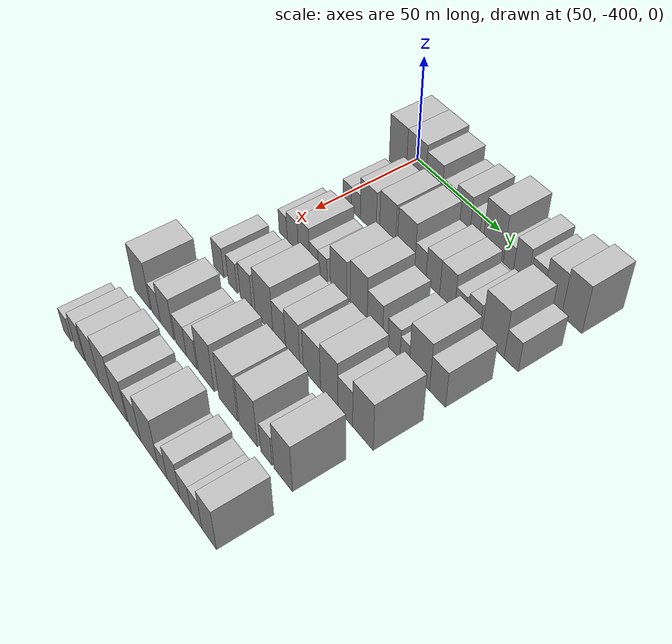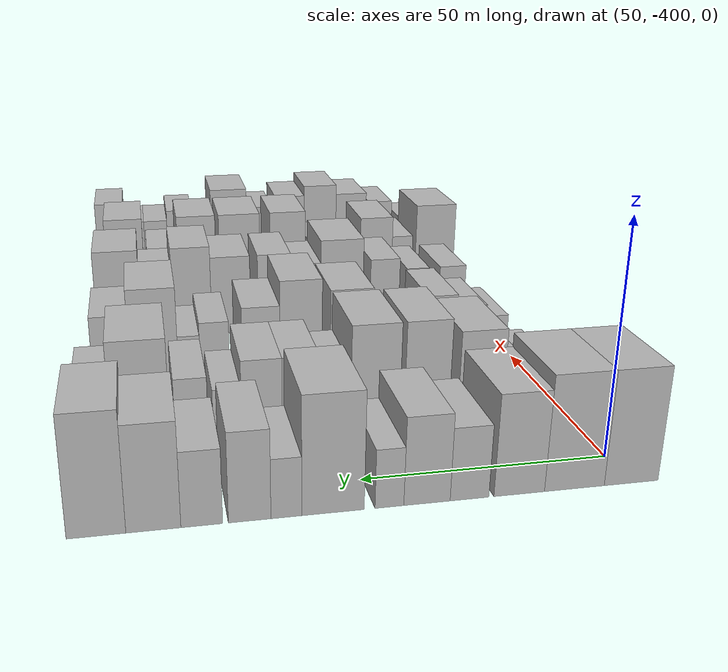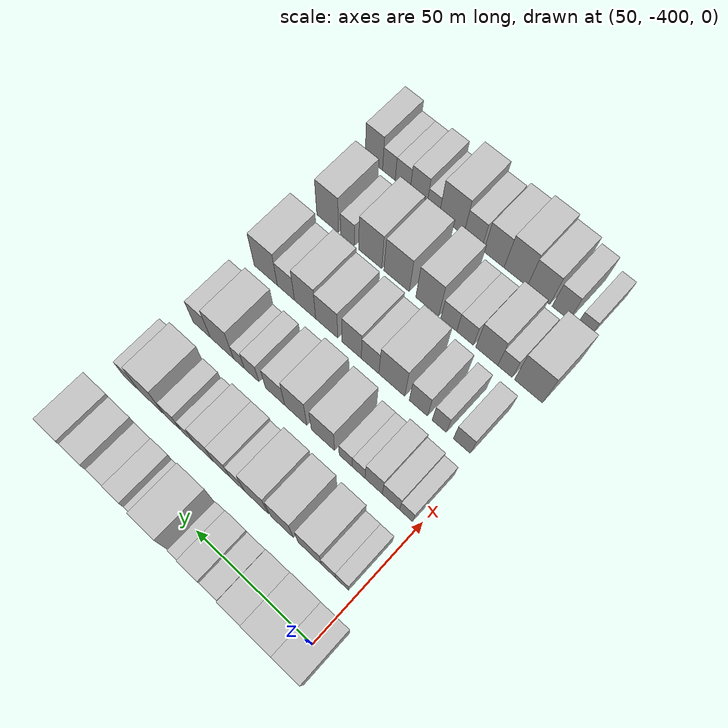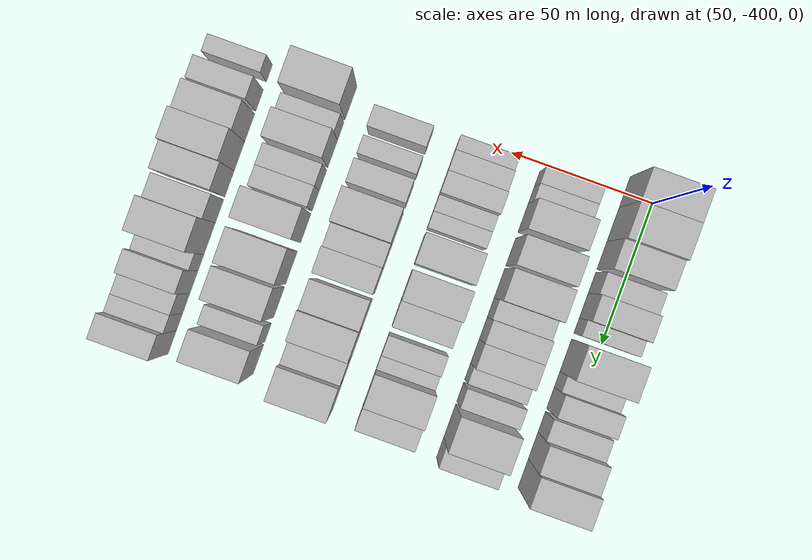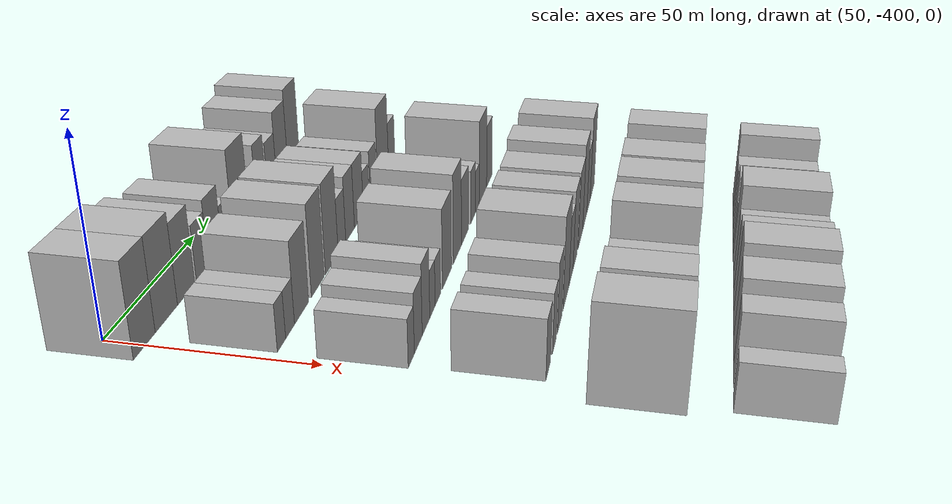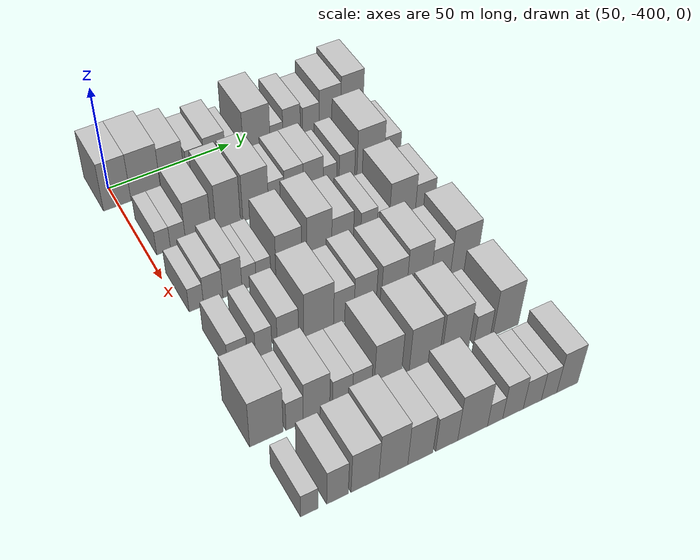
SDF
<sdf version="1.6">
 <world name="default">
  <model name="building_13">
   <static>1</static>
   <pose>50.0000 -400.4473 0 0.000000 0.000000 0.000000</pose>
   <link name="link">
    <pose>0 0 12.00 0 0 0</pose>
    <collision name="collision"><geometry><box><size>20.0000 10.9797 24.0000</size></box></geometry></collision>
    <visual name="visual">
     <cast_shadows>0</cast_shadows>
     <geometry><box><size>20.0000 10.9797 24.0000</size></box></geometry>
     <material>
      <script>
       <uri>model://HANNAS_wall/materials/scripts</uri>
       <uri>model://HANNAS_wall/materials/textures</uri>
       <name>vrc/HANNAS_wall</name>
      </script>
     </material>
    </visual>
   </link>
  </model>
  <model name="building_14">
   <static>1</static>
   <pose>50.0000 -388.9657 0 0.000000 0.000000 0.000000</pose>
   <link name="link">
    <pose>0 0 12.00 0 0 0</pose>
    <collision name="collision"><geometry><box><size>20.0000 11.9835 24.0000</size></box></geometry></collision>
    <visual name="visual">
     <cast_shadows>0</cast_shadows>
     <geometry><box><size>20.0000 11.9835 24.0000</size></box></geometry>
     <material>
      <script>
       <uri>model://HANNAS_wall/materials/scripts</uri>
       <uri>model://HANNAS_wall/materials/textures</uri>
       <name>vrc/HANNAS_wall</name>
      </script>
     </material>
    </visual>
   </link>
  </model>
  <model name="building_15">
   <static>1</static>
   <pose>50.0000 -378.0075 0 0.000000 0.000000 0.000000</pose>
   <link name="link">
    <pose>0 0 10.50 0 0 0</pose>
    <collision name="collision"><geometry><box><size>20.0000 9.9328 21.0000</size></box></geometry></collision>
    <visual name="visual">
     <cast_shadows>0</cast_shadows>
     <geometry><box><size>20.0000 9.9328 21.0000</size></box></geometry>
     <material>
      <script>
       <uri>model://HANNAS_wall/materials/scripts</uri>
       <uri>model://HANNAS_wall/materials/textures</uri>
       <name>vrc/HANNAS_wall</name>
      </script>
     </material>
    </visual>
   </link>
  </model>
  <model name="building_16">
   <static>1</static>
   <pose>50.0000 -368.3088 0 0.000000 0.000000 0.000000</pose>
   <link name="link">
    <pose>0 0 7.50 0 0 0</pose>
    <collision name="collision"><geometry><box><size>20.0000 7.4647 15.0000</size></box></geometry></collision>
    <visual name="visual">
     <cast_shadows>0</cast_shadows>
     <geometry><box><size>20.0000 7.4647 15.0000</size></box></geometry>
     <material>
      <script>
       <uri>model://HANNAS_wall/materials/scripts</uri>
       <uri>model://HANNAS_wall/materials/textures</uri>
       <name>vrc/HANNAS_wall</name>
      </script>
     </material>
    </visual>
   </link>
  </model>
  <model name="building_17">
   <static>1</static>
   <pose>50.0000 -360.1716 0 0.000000 0.000000 0.000000</pose>
   <link name="link">
    <pose>0 0 9.00 0 0 0</pose>
    <collision name="collision"><geometry><box><size>20.0000 8.8097 18.0000</size></box></geometry></collision>
    <visual name="visual">
     <cast_shadows>0</cast_shadows>
     <geometry><box><size>20.0000 8.8097 18.0000</size></box></geometry>
     <material>
      <script>
       <uri>model://HANNAS_wall/materials/scripts</uri>
       <uri>model://HANNAS_wall/materials/textures</uri>
       <name>vrc/HANNAS_wall</name>
      </script>
     </material>
    </visual>
   </link>
  </model>
  <model name="building_18">
   <static>1</static>
   <pose>50.0000 -353.0595 0 0.000000 0.000000 0.000000</pose>
   <link name="link">
    <pose>0 0 6.00 0 0 0</pose>
    <collision name="collision"><geometry><box><size>20.0000 5.4145 12.0000</size></box></geometry></collision>
    <visual name="visual">
     <cast_shadows>0</cast_shadows>
     <geometry><box><size>20.0000 5.4145 12.0000</size></box></geometry>
     <material>
      <script>
       <uri>model://HANNAS_wall/materials/scripts</uri>
       <uri>model://HANNAS_wall/materials/textures</uri>
       <name>vrc/HANNAS_wall</name>
      </script>
     </material>
    </visual>
   </link>
  </model>
  <model name="building_19">
   <static>1</static>
   <pose>50.0000 -342.5915 0 0.000000 0.000000 0.000000</pose>
   <link name="link">
    <pose>0 0 12.00 0 0 0</pose>
    <collision name="collision"><geometry><box><size>20.0000 11.5216 24.0000</size></box></geometry></collision>
    <visual name="visual">
     <cast_shadows>0</cast_shadows>
     <geometry><box><size>20.0000 11.5216 24.0000</size></box></geometry>
     <material>
      <script>
       <uri>model://HANNAS_wall/materials/scripts</uri>
       <uri>model://HANNAS_wall/materials/textures</uri>
       <name>vrc/HANNAS_wall</name>
      </script>
     </material>
    </visual>
   </link>
  </model>
  <model name="building_20">
   <static>1</static>
   <pose>50.0000 -334.0508 0 0.000000 0.000000 0.000000</pose>
   <link name="link">
    <pose>0 0 6.00 0 0 0</pose>
    <collision name="collision"><geometry><box><size>20.0000 5.5599 12.0000</size></box></geometry></collision>
    <visual name="visual">
     <cast_shadows>0</cast_shadows>
     <geometry><box><size>20.0000 5.5599 12.0000</size></box></geometry>
     <material>
      <script>
       <uri>model://HANNAS_wall/materials/scripts</uri>
       <uri>model://HANNAS_wall/materials/textures</uri>
       <name>vrc/HANNAS_wall</name>
      </script>
     </material>
    </visual>
   </link>
  </model>
  <model name="building_21">
   <static>1</static>
   <pose>50.0000 -327.4666 0 0.000000 0.000000 0.000000</pose>
   <link name="link">
    <pose>0 0 9.00 0 0 0</pose>
    <collision name="collision"><geometry><box><size>20.0000 7.6085 18.0000</size></box></geometry></collision>
    <visual name="visual">
     <cast_shadows>0</cast_shadows>
     <geometry><box><size>20.0000 7.6085 18.0000</size></box></geometry>
     <material>
      <script>
       <uri>model://HANNAS_wall/materials/scripts</uri>
       <uri>model://HANNAS_wall/materials/textures</uri>
       <name>vrc/HANNAS_wall</name>
      </script>
     </material>
    </visual>
   </link>
  </model>
  <model name="building_22">
   <static>1</static>
   <pose>50.0000 -318.9806 0 0.000000 0.000000 0.000000</pose>
   <link name="link">
    <pose>0 0 7.50 0 0 0</pose>
    <collision name="collision"><geometry><box><size>20.0000 7.3633 15.0000</size></box></geometry></collision>
    <visual name="visual">
     <cast_shadows>0</cast_shadows>
     <geometry><box><size>20.0000 7.3633 15.0000</size></box></geometry>
     <material>
      <script>
       <uri>model://HANNAS_wall/materials/scripts</uri>
       <uri>model://HANNAS_wall/materials/textures</uri>
       <name>vrc/HANNAS_wall</name>
      </script>
     </material>
    </visual>
   </link>
  </model>
  <model name="building_23">
   <static>1</static>
   <pose>50.0000 -310.5324 0 0.000000 0.000000 0.000000</pose>
   <link name="link">
    <pose>0 0 10.50 0 0 0</pose>
    <collision name="collision"><geometry><box><size>20.0000 9.5332 21.0000</size></box></geometry></collision>
    <visual name="visual">
     <cast_shadows>0</cast_shadows>
     <geometry><box><size>20.0000 9.5332 21.0000</size></box></geometry>
     <material>
      <script>
       <uri>model://HANNAS_wall/materials/scripts</uri>
       <uri>model://HANNAS_wall/materials/textures</uri>
       <name>vrc/HANNAS_wall</name>
      </script>
     </material>
    </visual>
   </link>
  </model>
  <model name="building_24">
   <static>1</static>
   <pose>50.0000 -300.6902 0 0.000000 0.000000 0.000000</pose>
   <link name="link">
    <pose>0 0 12.00 0 0 0</pose>
    <collision name="collision"><geometry><box><size>20.0000 10.1513 24.0000</size></box></geometry></collision>
    <visual name="visual">
     <cast_shadows>0</cast_shadows>
     <geometry><box><size>20.0000 10.1513 24.0000</size></box></geometry>
     <material>
      <script>
       <uri>model://HANNAS_wall/materials/scripts</uri>
       <uri>model://HANNAS_wall/materials/textures</uri>
       <name>vrc/HANNAS_wall</name>
      </script>
     </material>
    </visual>
   </link>
  </model>
  <model name="building_128">
   <static>1</static>
   <pose>79.0000 -394.4232 0 0.000000 0.000000 0.000000</pose>
   <link name="link">
    <pose>0 0 6.00 0 0 0</pose>
    <collision name="collision"><geometry><box><size>20.0000 5.4331 12.0000</size></box></geometry></collision>
    <visual name="visual">
     <cast_shadows>0</cast_shadows>
     <geometry><box><size>20.0000 5.4331 12.0000</size></box></geometry>
     <material>
      <script>
       <uri>model://HANNAS_wall/materials/scripts</uri>
       <uri>model://HANNAS_wall/materials/textures</uri>
       <name>vrc/HANNAS_wall</name>
      </script>
     </material>
    </visual>
   </link>
  </model>
  <model name="building_129">
   <static>1</static>
   <pose>79.0000 -388.7183 0 0.000000 0.000000 0.000000</pose>
   <link name="link">
    <pose>0 0 6.00 0 0 0</pose>
    <collision name="collision"><geometry><box><size>20.0000 5.9767 12.0000</size></box></geometry></collision>
    <visual name="visual">
     <cast_shadows>0</cast_shadows>
     <geometry><box><size>20.0000 5.9767 12.0000</size></box></geometry>
     <material>
      <script>
       <uri>model://HANNAS_wall/materials/scripts</uri>
       <uri>model://HANNAS_wall/materials/textures</uri>
       <name>vrc/HANNAS_wall</name>
      </script>
     </material>
    </visual>
   </link>
  </model>
  <model name="building_130">
   <static>1</static>
   <pose>79.0000 -380.6949 0 0.000000 0.000000 0.000000</pose>
   <link name="link">
    <pose>0 0 10.50 0 0 0</pose>
    <collision name="collision"><geometry><box><size>20.0000 10.0702 21.0000</size></box></geometry></collision>
    <visual name="visual">
     <cast_shadows>0</cast_shadows>
     <geometry><box><size>20.0000 10.0702 21.0000</size></box></geometry>
     <material>
      <script>
       <uri>model://HANNAS_wall/materials/scripts</uri>
       <uri>model://HANNAS_wall/materials/textures</uri>
       <name>vrc/HANNAS_wall</name>
      </script>
     </material>
    </visual>
   </link>
  </model>
  <model name="building_131">
   <static>1</static>
   <pose>79.0000 -368.7418 0 0.000000 0.000000 0.000000</pose>
   <link name="link">
    <pose>0 0 12.00 0 0 0</pose>
    <collision name="collision"><geometry><box><size>20.0000 9.8359 24.0000</size></box></geometry></collision>
    <visual name="visual">
     <cast_shadows>0</cast_shadows>
     <geometry><box><size>20.0000 9.8359 24.0000</size></box></geometry>
     <material>
      <script>
       <uri>model://HANNAS_wall/materials/scripts</uri>
       <uri>model://HANNAS_wall/materials/textures</uri>
       <name>vrc/HANNAS_wall</name>
      </script>
     </material>
    </visual>
   </link>
  </model>
  <model name="building_132">
   <static>1</static>
   <pose>79.0000 -357.5543 0 0.000000 0.000000 0.000000</pose>
   <link name="link">
    <pose>0 0 12.00 0 0 0</pose>
    <collision name="collision"><geometry><box><size>20.0000 10.5392 24.0000</size></box></geometry></collision>
    <visual name="visual">
     <cast_shadows>0</cast_shadows>
     <geometry><box><size>20.0000 10.5392 24.0000</size></box></geometry>
     <material>
      <script>
       <uri>model://HANNAS_wall/materials/scripts</uri>
       <uri>model://HANNAS_wall/materials/textures</uri>
       <name>vrc/HANNAS_wall</name>
      </script>
     </material>
    </visual>
   </link>
  </model>
  <model name="building_133">
   <static>1</static>
   <pose>79.0000 -348.9786 0 0.000000 0.000000 0.000000</pose>
   <link name="link">
    <pose>0 0 7.50 0 0 0</pose>
    <collision name="collision"><geometry><box><size>20.0000 6.6121 15.0000</size></box></geometry></collision>
    <visual name="visual">
     <cast_shadows>0</cast_shadows>
     <geometry><box><size>20.0000 6.6121 15.0000</size></box></geometry>
     <material>
      <script>
       <uri>model://HANNAS_wall/materials/scripts</uri>
       <uri>model://HANNAS_wall/materials/textures</uri>
       <name>vrc/HANNAS_wall</name>
      </script>
     </material>
    </visual>
   </link>
  </model>
  <model name="building_134">
   <static>1</static>
   <pose>79.0000 -341.7560 0 0.000000 0.000000 0.000000</pose>
   <link name="link">
    <pose>0 0 9.00 0 0 0</pose>
    <collision name="collision"><geometry><box><size>20.0000 7.8332 18.0000</size></box></geometry></collision>
    <visual name="visual">
     <cast_shadows>0</cast_shadows>
     <geometry><box><size>20.0000 7.8332 18.0000</size></box></geometry>
     <material>
      <script>
       <uri>model://HANNAS_wall/materials/scripts</uri>
       <uri>model://HANNAS_wall/materials/textures</uri>
       <name>vrc/HANNAS_wall</name>
      </script>
     </material>
    </visual>
   </link>
  </model>
  <model name="building_135">
   <static>1</static>
   <pose>79.0000 -333.6165 0 0.000000 0.000000 0.000000</pose>
   <link name="link">
    <pose>0 0 9.00 0 0 0</pose>
    <collision name="collision"><geometry><box><size>20.0000 8.4457 18.0000</size></box></geometry></collision>
    <visual name="visual">
     <cast_shadows>0</cast_shadows>
     <geometry><box><size>20.0000 8.4457 18.0000</size></box></geometry>
     <material>
      <script>
       <uri>model://HANNAS_wall/materials/scripts</uri>
       <uri>model://HANNAS_wall/materials/textures</uri>
       <name>vrc/HANNAS_wall</name>
      </script>
     </material>
    </visual>
   </link>
  </model>
  <model name="building_136">
   <static>1</static>
   <pose>79.0000 -326.4831 0 0.000000 0.000000 0.000000</pose>
   <link name="link">
    <pose>0 0 6.00 0 0 0</pose>
    <collision name="collision"><geometry><box><size>20.0000 5.8210 12.0000</size></box></geometry></collision>
    <visual name="visual">
     <cast_shadows>0</cast_shadows>
     <geometry><box><size>20.0000 5.8210 12.0000</size></box></geometry>
     <material>
      <script>
       <uri>model://HANNAS_wall/materials/scripts</uri>
       <uri>model://HANNAS_wall/materials/textures</uri>
       <name>vrc/HANNAS_wall</name>
      </script>
     </material>
    </visual>
   </link>
  </model>
  <model name="building_137">
   <static>1</static>
   <pose>79.0000 -319.1987 0 0.000000 0.000000 0.000000</pose>
   <link name="link">
    <pose>0 0 7.50 0 0 0</pose>
    <collision name="collision"><geometry><box><size>20.0000 6.7479 15.0000</size></box></geometry></collision>
    <visual name="visual">
     <cast_shadows>0</cast_shadows>
     <geometry><box><size>20.0000 6.7479 15.0000</size></box></geometry>
     <material>
      <script>
       <uri>model://HANNAS_wall/materials/scripts</uri>
       <uri>model://HANNAS_wall/materials/textures</uri>
       <name>vrc/HANNAS_wall</name>
      </script>
     </material>
    </visual>
   </link>
  </model>
  <model name="building_138">
   <static>1</static>
   <pose>79.0000 -308.9239 0 0.000000 0.000000 0.000000</pose>
   <link name="link">
    <pose>0 0 12.00 0 0 0</pose>
    <collision name="collision"><geometry><box><size>20.0000 11.8016 24.0000</size></box></geometry></collision>
    <visual name="visual">
     <cast_shadows>0</cast_shadows>
     <geometry><box><size>20.0000 11.8016 24.0000</size></box></geometry>
     <material>
      <script>
       <uri>model://HANNAS_wall/materials/scripts</uri>
       <uri>model://HANNAS_wall/materials/textures</uri>
       <name>vrc/HANNAS_wall</name>
      </script>
     </material>
    </visual>
   </link>
  </model>
  <model name="building_139">
   <static>1</static>
   <pose>79.0000 -299.4353 0 0.000000 0.000000 0.000000</pose>
   <link name="link">
    <pose>0 0 7.50 0 0 0</pose>
    <collision name="collision"><geometry><box><size>20.0000 7.1756 15.0000</size></box></geometry></collision>
    <visual name="visual">
     <cast_shadows>0</cast_shadows>
     <geometry><box><size>20.0000 7.1756 15.0000</size></box></geometry>
     <material>
      <script>
       <uri>model://HANNAS_wall/materials/scripts</uri>
       <uri>model://HANNAS_wall/materials/textures</uri>
       <name>vrc/HANNAS_wall</name>
      </script>
     </material>
    </visual>
   </link>
  </model>
  <model name="building_243">
   <static>1</static>
   <pose>108.0000 -394.8437 0 0.000000 0.000000 0.000000</pose>
   <link name="link">
    <pose>0 0 6.00 0 0 0</pose>
    <collision name="collision"><geometry><box><size>20.0000 5.5053 12.0000</size></box></geometry></collision>
    <visual name="visual">
     <cast_shadows>0</cast_shadows>
     <geometry><box><size>20.0000 5.5053 12.0000</size></box></geometry>
     <material>
      <script>
       <uri>model://HANNAS_wall/materials/scripts</uri>
       <uri>model://HANNAS_wall/materials/textures</uri>
       <name>vrc/HANNAS_wall</name>
      </script>
     </material>
    </visual>
   </link>
  </model>
  <model name="building_244">
   <static>1</static>
   <pose>108.0000 -388.4229 0 0.000000 0.000000 0.000000</pose>
   <link name="link">
    <pose>0 0 7.50 0 0 0</pose>
    <collision name="collision"><geometry><box><size>20.0000 7.3362 15.0000</size></box></geometry></collision>
    <visual name="visual">
     <cast_shadows>0</cast_shadows>
     <geometry><box><size>20.0000 7.3362 15.0000</size></box></geometry>
     <material>
      <script>
       <uri>model://HANNAS_wall/materials/scripts</uri>
       <uri>model://HANNAS_wall/materials/textures</uri>
       <name>vrc/HANNAS_wall</name>
      </script>
     </material>
    </visual>
   </link>
  </model>
  <model name="building_245">
   <static>1</static>
   <pose>108.0000 -381.0551 0 0.000000 0.000000 0.000000</pose>
   <link name="link">
    <pose>0 0 9.00 0 0 0</pose>
    <collision name="collision"><geometry><box><size>20.0000 7.3995 18.0000</size></box></geometry></collision>
    <visual name="visual">
     <cast_shadows>0</cast_shadows>
     <geometry><box><size>20.0000 7.3995 18.0000</size></box></geometry>
     <material>
      <script>
       <uri>model://HANNAS_wall/materials/scripts</uri>
       <uri>model://HANNAS_wall/materials/textures</uri>
       <name>vrc/HANNAS_wall</name>
      </script>
     </material>
    </visual>
   </link>
  </model>
  <model name="building_246">
   <static>1</static>
   <pose>108.0000 -374.5872 0 0.000000 0.000000 0.000000</pose>
   <link name="link">
    <pose>0 0 6.00 0 0 0</pose>
    <collision name="collision"><geometry><box><size>20.0000 5.5364 12.0000</size></box></geometry></collision>
    <visual name="visual">
     <cast_shadows>0</cast_shadows>
     <geometry><box><size>20.0000 5.5364 12.0000</size></box></geometry>
     <material>
      <script>
       <uri>model://HANNAS_wall/materials/scripts</uri>
       <uri>model://HANNAS_wall/materials/textures</uri>
       <name>vrc/HANNAS_wall</name>
      </script>
     </material>
    </visual>
   </link>
  </model>
  <model name="building_247">
   <static>1</static>
   <pose>108.0000 -368.9586 0 0.000000 0.000000 0.000000</pose>
   <link name="link">
    <pose>0 0 6.00 0 0 0</pose>
    <collision name="collision"><geometry><box><size>20.0000 5.7207 12.0000</size></box></geometry></collision>
    <visual name="visual">
     <cast_shadows>0</cast_shadows>
     <geometry><box><size>20.0000 5.7207 12.0000</size></box></geometry>
     <material>
      <script>
       <uri>model://HANNAS_wall/materials/scripts</uri>
       <uri>model://HANNAS_wall/materials/textures</uri>
       <name>vrc/HANNAS_wall</name>
      </script>
     </material>
    </visual>
   </link>
  </model>
  <model name="building_248">
   <static>1</static>
   <pose>108.0000 -358.9488 0 0.000000 0.000000 0.000000</pose>
   <link name="link">
    <pose>0 0 10.50 0 0 0</pose>
    <collision name="collision"><geometry><box><size>20.0000 10.2989 21.0000</size></box></geometry></collision>
    <visual name="visual">
     <cast_shadows>0</cast_shadows>
     <geometry><box><size>20.0000 10.2989 21.0000</size></box></geometry>
     <material>
      <script>
       <uri>model://HANNAS_wall/materials/scripts</uri>
       <uri>model://HANNAS_wall/materials/textures</uri>
       <name>vrc/HANNAS_wall</name>
      </script>
     </material>
    </visual>
   </link>
  </model>
  <model name="building_249">
   <static>1</static>
   <pose>108.0000 -346.7897 0 0.000000 0.000000 0.000000</pose>
   <link name="link">
    <pose>0 0 12.00 0 0 0</pose>
    <collision name="collision"><geometry><box><size>20.0000 10.0193 24.0000</size></box></geometry></collision>
    <visual name="visual">
     <cast_shadows>0</cast_shadows>
     <geometry><box><size>20.0000 10.0193 24.0000</size></box></geometry>
     <material>
      <script>
       <uri>model://HANNAS_wall/materials/scripts</uri>
       <uri>model://HANNAS_wall/materials/textures</uri>
       <name>vrc/HANNAS_wall</name>
      </script>
     </material>
    </visual>
   </link>
  </model>
  <model name="building_250">
   <static>1</static>
   <pose>108.0000 -337.3331 0 0.000000 0.000000 0.000000</pose>
   <link name="link">
    <pose>0 0 9.00 0 0 0</pose>
    <collision name="collision"><geometry><box><size>20.0000 8.8938 18.0000</size></box></geometry></collision>
    <visual name="visual">
     <cast_shadows>0</cast_shadows>
     <geometry><box><size>20.0000 8.8938 18.0000</size></box></geometry>
     <material>
      <script>
       <uri>model://HANNAS_wall/materials/scripts</uri>
       <uri>model://HANNAS_wall/materials/textures</uri>
       <name>vrc/HANNAS_wall</name>
      </script>
     </material>
    </visual>
   </link>
  </model>
  <model name="building_251">
   <static>1</static>
   <pose>108.0000 -326.4822 0 0.000000 0.000000 0.000000</pose>
   <link name="link">
    <pose>0 0 7.50 0 0 0</pose>
    <collision name="collision"><geometry><box><size>20.0000 6.8080 15.0000</size></box></geometry></collision>
    <visual name="visual">
     <cast_shadows>0</cast_shadows>
     <geometry><box><size>20.0000 6.8080 15.0000</size></box></geometry>
     <material>
      <script>
       <uri>model://HANNAS_wall/materials/scripts</uri>
       <uri>model://HANNAS_wall/materials/textures</uri>
       <name>vrc/HANNAS_wall</name>
      </script>
     </material>
    </visual>
   </link>
  </model>
  <model name="building_252">
   <static>1</static>
   <pose>108.0000 -320.5567 0 0.000000 0.000000 0.000000</pose>
   <link name="link">
    <pose>0 0 6.00 0 0 0</pose>
    <collision name="collision"><geometry><box><size>20.0000 5.0429 12.0000</size></box></geometry></collision>
    <visual name="visual">
     <cast_shadows>0</cast_shadows>
     <geometry><box><size>20.0000 5.0429 12.0000</size></box></geometry>
     <material>
      <script>
       <uri>model://HANNAS_wall/materials/scripts</uri>
       <uri>model://HANNAS_wall/materials/textures</uri>
       <name>vrc/HANNAS_wall</name>
      </script>
     </material>
    </visual>
   </link>
  </model>
  <model name="building_253">
   <static>1</static>
   <pose>108.0000 -312.5200 0 0.000000 0.000000 0.000000</pose>
   <link name="link">
    <pose>0 0 12.00 0 0 0</pose>
    <collision name="collision"><geometry><box><size>20.0000 11.0306 24.0000</size></box></geometry></collision>
    <visual name="visual">
     <cast_shadows>0</cast_shadows>
     <geometry><box><size>20.0000 11.0306 24.0000</size></box></geometry>
     <material>
      <script>
       <uri>model://HANNAS_wall/materials/scripts</uri>
       <uri>model://HANNAS_wall/materials/textures</uri>
       <name>vrc/HANNAS_wall</name>
      </script>
     </material>
    </visual>
   </link>
  </model>
  <model name="building_254">
   <static>1</static>
   <pose>108.0000 -302.8334 0 0.000000 0.000000 0.000000</pose>
   <link name="link">
    <pose>0 0 9.00 0 0 0</pose>
    <collision name="collision"><geometry><box><size>20.0000 8.3425 18.0000</size></box></geometry></collision>
    <visual name="visual">
     <cast_shadows>0</cast_shadows>
     <geometry><box><size>20.0000 8.3425 18.0000</size></box></geometry>
     <material>
      <script>
       <uri>model://HANNAS_wall/materials/scripts</uri>
       <uri>model://HANNAS_wall/materials/textures</uri>
       <name>vrc/HANNAS_wall</name>
      </script>
     </material>
    </visual>
   </link>
  </model>
  <model name="building_359">
   <static>1</static>
   <pose>137.0000 -393.1329 0 0.000000 0.000000 0.000000</pose>
   <link name="link">
    <pose>0 0 7.50 0 0 0</pose>
    <collision name="collision"><geometry><box><size>20.0000 7.1959 15.0000</size></box></geometry></collision>
    <visual name="visual">
     <cast_shadows>0</cast_shadows>
     <geometry><box><size>20.0000 7.1959 15.0000</size></box></geometry>
     <material>
      <script>
       <uri>model://HANNAS_wall/materials/scripts</uri>
       <uri>model://HANNAS_wall/materials/textures</uri>
       <name>vrc/HANNAS_wall</name>
      </script>
     </material>
    </visual>
   </link>
  </model>
  <model name="building_360">
   <static>1</static>
   <pose>137.0000 -383.4746 0 0.000000 0.000000 0.000000</pose>
   <link name="link">
    <pose>0 0 7.50 0 0 0</pose>
    <collision name="collision"><geometry><box><size>20.0000 6.1206 15.0000</size></box></geometry></collision>
    <visual name="visual">
     <cast_shadows>0</cast_shadows>
     <geometry><box><size>20.0000 6.1206 15.0000</size></box></geometry>
     <material>
      <script>
       <uri>model://HANNAS_wall/materials/scripts</uri>
       <uri>model://HANNAS_wall/materials/textures</uri>
       <name>vrc/HANNAS_wall</name>
      </script>
     </material>
    </visual>
   </link>
  </model>
  <model name="building_361">
   <static>1</static>
   <pose>137.0000 -374.4410 0 0.000000 0.000000 0.000000</pose>
   <link name="link">
    <pose>0 0 9.00 0 0 0</pose>
    <collision name="collision"><geometry><box><size>20.0000 7.9466 18.0000</size></box></geometry></collision>
    <visual name="visual">
     <cast_shadows>0</cast_shadows>
     <geometry><box><size>20.0000 7.9466 18.0000</size></box></geometry>
     <material>
      <script>
       <uri>model://HANNAS_wall/materials/scripts</uri>
       <uri>model://HANNAS_wall/materials/textures</uri>
       <name>vrc/HANNAS_wall</name>
      </script>
     </material>
    </visual>
   </link>
  </model>
  <model name="building_362">
   <static>1</static>
   <pose>137.0000 -362.7457 0 0.000000 0.000000 0.000000</pose>
   <link name="link">
    <pose>0 0 12.00 0 0 0</pose>
    <collision name="collision"><geometry><box><size>20.0000 11.4441 24.0000</size></box></geometry></collision>
    <visual name="visual">
     <cast_shadows>0</cast_shadows>
     <geometry><box><size>20.0000 11.4441 24.0000</size></box></geometry>
     <material>
      <script>
       <uri>model://HANNAS_wall/materials/scripts</uri>
       <uri>model://HANNAS_wall/materials/textures</uri>
       <name>vrc/HANNAS_wall</name>
      </script>
     </material>
    </visual>
   </link>
  </model>
  <model name="building_363">
   <static>1</static>
   <pose>137.0000 -353.0600 0 0.000000 0.000000 0.000000</pose>
   <link name="link">
    <pose>0 0 9.00 0 0 0</pose>
    <collision name="collision"><geometry><box><size>20.0000 7.9272 18.0000</size></box></geometry></collision>
    <visual name="visual">
     <cast_shadows>0</cast_shadows>
     <geometry><box><size>20.0000 7.9272 18.0000</size></box></geometry>
     <material>
      <script>
       <uri>model://HANNAS_wall/materials/scripts</uri>
       <uri>model://HANNAS_wall/materials/textures</uri>
       <name>vrc/HANNAS_wall</name>
      </script>
     </material>
    </visual>
   </link>
  </model>
  <model name="building_364">
   <static>1</static>
   <pose>137.0000 -344.7303 0 0.000000 0.000000 0.000000</pose>
   <link name="link">
    <pose>0 0 10.50 0 0 0</pose>
    <collision name="collision"><geometry><box><size>20.0000 8.7323 21.0000</size></box></geometry></collision>
    <visual name="visual">
     <cast_shadows>0</cast_shadows>
     <geometry><box><size>20.0000 8.7323 21.0000</size></box></geometry>
     <material>
      <script>
       <uri>model://HANNAS_wall/materials/scripts</uri>
       <uri>model://HANNAS_wall/materials/textures</uri>
       <name>vrc/HANNAS_wall</name>
      </script>
     </material>
    </visual>
   </link>
  </model>
  <model name="building_365">
   <static>1</static>
   <pose>137.0000 -333.2692 0 0.000000 0.000000 0.000000</pose>
   <link name="link">
    <pose>0 0 10.50 0 0 0</pose>
    <collision name="collision"><geometry><box><size>20.0000 10.1899 21.0000</size></box></geometry></collision>
    <visual name="visual">
     <cast_shadows>0</cast_shadows>
     <geometry><box><size>20.0000 10.1899 21.0000</size></box></geometry>
     <material>
      <script>
       <uri>model://HANNAS_wall/materials/scripts</uri>
       <uri>model://HANNAS_wall/materials/textures</uri>
       <name>vrc/HANNAS_wall</name>
      </script>
     </material>
    </visual>
   </link>
  </model>
  <model name="building_366">
   <static>1</static>
   <pose>137.0000 -323.1924 0 0.000000 0.000000 0.000000</pose>
   <link name="link">
    <pose>0 0 12.00 0 0 0</pose>
    <collision name="collision"><geometry><box><size>20.0000 9.9635 24.0000</size></box></geometry></collision>
    <visual name="visual">
     <cast_shadows>0</cast_shadows>
     <geometry><box><size>20.0000 9.9635 24.0000</size></box></geometry>
     <material>
      <script>
       <uri>model://HANNAS_wall/materials/scripts</uri>
       <uri>model://HANNAS_wall/materials/textures</uri>
       <name>vrc/HANNAS_wall</name>
      </script>
     </material>
    </visual>
   </link>
  </model>
  <model name="building_367">
   <static>1</static>
   <pose>137.0000 -314.1323 0 0.000000 0.000000 0.000000</pose>
   <link name="link">
    <pose>0 0 9.00 0 0 0</pose>
    <collision name="collision"><geometry><box><size>20.0000 8.1568 18.0000</size></box></geometry></collision>
    <visual name="visual">
     <cast_shadows>0</cast_shadows>
     <geometry><box><size>20.0000 8.1568 18.0000</size></box></geometry>
     <material>
      <script>
       <uri>model://HANNAS_wall/materials/scripts</uri>
       <uri>model://HANNAS_wall/materials/textures</uri>
       <name>vrc/HANNAS_wall</name>
      </script>
     </material>
    </visual>
   </link>
  </model>
  <model name="building_368">
   <static>1</static>
   <pose>137.0000 -304.4791 0 0.000000 0.000000 0.000000</pose>
   <link name="link">
    <pose>0 0 12.00 0 0 0</pose>
    <collision name="collision"><geometry><box><size>20.0000 11.1495 24.0000</size></box></geometry></collision>
    <visual name="visual">
     <cast_shadows>0</cast_shadows>
     <geometry><box><size>20.0000 11.1495 24.0000</size></box></geometry>
     <material>
      <script>
       <uri>model://HANNAS_wall/materials/scripts</uri>
       <uri>model://HANNAS_wall/materials/textures</uri>
       <name>vrc/HANNAS_wall</name>
      </script>
     </material>
    </visual>
   </link>
  </model>
  <model name="building_470">
   <static>1</static>
   <pose>166.0000 -397.2016 0 0.000000 0.000000 0.000000</pose>
   <link name="link">
    <pose>0 0 12.00 0 0 0</pose>
    <collision name="collision"><geometry><box><size>20.0000 11.8601 24.0000</size></box></geometry></collision>
    <visual name="visual">
     <cast_shadows>0</cast_shadows>
     <geometry><box><size>20.0000 11.8601 24.0000</size></box></geometry>
     <material>
      <script>
       <uri>model://HANNAS_wall/materials/scripts</uri>
       <uri>model://HANNAS_wall/materials/textures</uri>
       <name>vrc/HANNAS_wall</name>
      </script>
     </material>
    </visual>
   </link>
  </model>
  <model name="building_471">
   <static>1</static>
   <pose>166.0000 -387.1842 0 0.000000 0.000000 0.000000</pose>
   <link name="link">
    <pose>0 0 7.50 0 0 0</pose>
    <collision name="collision"><geometry><box><size>20.0000 6.1746 15.0000</size></box></geometry></collision>
    <visual name="visual">
     <cast_shadows>0</cast_shadows>
     <geometry><box><size>20.0000 6.1746 15.0000</size></box></geometry>
     <material>
      <script>
       <uri>model://HANNAS_wall/materials/scripts</uri>
       <uri>model://HANNAS_wall/materials/textures</uri>
       <name>vrc/HANNAS_wall</name>
      </script>
     </material>
    </visual>
   </link>
  </model>
  <model name="building_472">
   <static>1</static>
   <pose>166.0000 -379.2861 0 0.000000 0.000000 0.000000</pose>
   <link name="link">
    <pose>0 0 10.50 0 0 0</pose>
    <collision name="collision"><geometry><box><size>20.0000 9.6215 21.0000</size></box></geometry></collision>
    <visual name="visual">
     <cast_shadows>0</cast_shadows>
     <geometry><box><size>20.0000 9.6215 21.0000</size></box></geometry>
     <material>
      <script>
       <uri>model://HANNAS_wall/materials/scripts</uri>
       <uri>model://HANNAS_wall/materials/textures</uri>
       <name>vrc/HANNAS_wall</name>
      </script>
     </material>
    </visual>
   </link>
  </model>
  <model name="building_473">
   <static>1</static>
   <pose>166.0000 -369.7898 0 0.000000 0.000000 0.000000</pose>
   <link name="link">
    <pose>0 0 7.50 0 0 0</pose>
    <collision name="collision"><geometry><box><size>20.0000 7.3712 15.0000</size></box></geometry></collision>
    <visual name="visual">
     <cast_shadows>0</cast_shadows>
     <geometry><box><size>20.0000 7.3712 15.0000</size></box></geometry>
     <material>
      <script>
       <uri>model://HANNAS_wall/materials/scripts</uri>
       <uri>model://HANNAS_wall/materials/textures</uri>
       <name>vrc/HANNAS_wall</name>
      </script>
     </material>
    </visual>
   </link>
  </model>
  <model name="building_474">
   <static>1</static>
   <pose>166.0000 -362.5736 0 0.000000 0.000000 0.000000</pose>
   <link name="link">
    <pose>0 0 7.50 0 0 0</pose>
    <collision name="collision"><geometry><box><size>20.0000 7.0613 15.0000</size></box></geometry></collision>
    <visual name="visual">
     <cast_shadows>0</cast_shadows>
     <geometry><box><size>20.0000 7.0613 15.0000</size></box></geometry>
     <material>
      <script>
       <uri>model://HANNAS_wall/materials/scripts</uri>
       <uri>model://HANNAS_wall/materials/textures</uri>
       <name>vrc/HANNAS_wall</name>
      </script>
     </material>
    </visual>
   </link>
  </model>
  <model name="building_475">
   <static>1</static>
   <pose>166.0000 -352.8922 0 0.000000 0.000000 0.000000</pose>
   <link name="link">
    <pose>0 0 12.00 0 0 0</pose>
    <collision name="collision"><geometry><box><size>20.0000 10.3015 24.0000</size></box></geometry></collision>
    <visual name="visual">
     <cast_shadows>0</cast_shadows>
     <geometry><box><size>20.0000 10.3015 24.0000</size></box></geometry>
     <material>
      <script>
       <uri>model://HANNAS_wall/materials/scripts</uri>
       <uri>model://HANNAS_wall/materials/textures</uri>
       <name>vrc/HANNAS_wall</name>
      </script>
     </material>
    </visual>
   </link>
  </model>
  <model name="building_476">
   <static>1</static>
   <pose>166.0000 -338.8973 0 0.000000 0.000000 0.000000</pose>
   <link name="link">
    <pose>0 0 12.00 0 0 0</pose>
    <collision name="collision"><geometry><box><size>20.0000 11.6883 24.0000</size></box></geometry></collision>
    <visual name="visual">
     <cast_shadows>0</cast_shadows>
     <geometry><box><size>20.0000 11.6883 24.0000</size></box></geometry>
     <material>
      <script>
       <uri>model://HANNAS_wall/materials/scripts</uri>
       <uri>model://HANNAS_wall/materials/textures</uri>
       <name>vrc/HANNAS_wall</name>
      </script>
     </material>
    </visual>
   </link>
  </model>
  <model name="building_477">
   <static>1</static>
   <pose>166.0000 -326.6421 0 0.000000 0.000000 0.000000</pose>
   <link name="link">
    <pose>0 0 12.00 0 0 0</pose>
    <collision name="collision"><geometry><box><size>20.0000 10.8221 24.0000</size></box></geometry></collision>
    <visual name="visual">
     <cast_shadows>0</cast_shadows>
     <geometry><box><size>20.0000 10.8221 24.0000</size></box></geometry>
     <material>
      <script>
       <uri>model://HANNAS_wall/materials/scripts</uri>
       <uri>model://HANNAS_wall/materials/textures</uri>
       <name>vrc/HANNAS_wall</name>
      </script>
     </material>
    </visual>
   </link>
  </model>
  <model name="building_478">
   <static>1</static>
   <pose>166.0000 -315.9344 0 0.000000 0.000000 0.000000</pose>
   <link name="link">
    <pose>0 0 7.50 0 0 0</pose>
    <collision name="collision"><geometry><box><size>20.0000 6.5931 15.0000</size></box></geometry></collision>
    <visual name="visual">
     <cast_shadows>0</cast_shadows>
     <geometry><box><size>20.0000 6.5931 15.0000</size></box></geometry>
     <material>
      <script>
       <uri>model://HANNAS_wall/materials/scripts</uri>
       <uri>model://HANNAS_wall/materials/textures</uri>
       <name>vrc/HANNAS_wall</name>
      </script>
     </material>
    </visual>
   </link>
  </model>
  <model name="building_479">
   <static>1</static>
   <pose>166.0000 -306.4144 0 0.000000 0.000000 0.000000</pose>
   <link name="link">
    <pose>0 0 12.00 0 0 0</pose>
    <collision name="collision"><geometry><box><size>20.0000 10.4469 24.0000</size></box></geometry></collision>
    <visual name="visual">
     <cast_shadows>0</cast_shadows>
     <geometry><box><size>20.0000 10.4469 24.0000</size></box></geometry>
     <material>
      <script>
       <uri>model://HANNAS_wall/materials/scripts</uri>
       <uri>model://HANNAS_wall/materials/textures</uri>
       <name>vrc/HANNAS_wall</name>
      </script>
     </material>
    </visual>
   </link>
  </model>
  <model name="building_584">
   <static>1</static>
   <pose>195.0000 -397.4251 0 0.000000 0.000000 0.000000</pose>
   <link name="link">
    <pose>0 0 6.00 0 0 0</pose>
    <collision name="collision"><geometry><box><size>20.0000 5.9370 12.0000</size></box></geometry></collision>
    <visual name="visual">
     <cast_shadows>0</cast_shadows>
     <geometry><box><size>20.0000 5.9370 12.0000</size></box></geometry>
     <material>
      <script>
       <uri>model://HANNAS_wall/materials/scripts</uri>
       <uri>model://HANNAS_wall/materials/textures</uri>
       <name>vrc/HANNAS_wall</name>
      </script>
     </material>
    </visual>
   </link>
  </model>
  <model name="building_585">
   <static>1</static>
   <pose>195.0000 -387.7228 0 0.000000 0.000000 0.000000</pose>
   <link name="link">
    <pose>0 0 9.00 0 0 0</pose>
    <collision name="collision"><geometry><box><size>20.0000 7.4676 18.0000</size></box></geometry></collision>
    <visual name="visual">
     <cast_shadows>0</cast_shadows>
     <geometry><box><size>20.0000 7.4676 18.0000</size></box></geometry>
     <material>
      <script>
       <uri>model://HANNAS_wall/materials/scripts</uri>
       <uri>model://HANNAS_wall/materials/textures</uri>
       <name>vrc/HANNAS_wall</name>
      </script>
     </material>
    </visual>
   </link>
  </model>
  <model name="building_586">
   <static>1</static>
   <pose>195.0000 -378.0646 0 0.000000 0.000000 0.000000</pose>
   <link name="link">
    <pose>0 0 10.50 0 0 0</pose>
    <collision name="collision"><geometry><box><size>20.0000 9.8488 21.0000</size></box></geometry></collision>
    <visual name="visual">
     <cast_shadows>0</cast_shadows>
     <geometry><box><size>20.0000 9.8488 21.0000</size></box></geometry>
     <material>
      <script>
       <uri>model://HANNAS_wall/materials/scripts</uri>
       <uri>model://HANNAS_wall/materials/textures</uri>
       <name>vrc/HANNAS_wall</name>
      </script>
     </material>
    </visual>
   </link>
  </model>
  <model name="building_587">
   <static>1</static>
   <pose>195.0000 -367.9574 0 0.000000 0.000000 0.000000</pose>
   <link name="link">
    <pose>0 0 12.00 0 0 0</pose>
    <collision name="collision"><geometry><box><size>20.0000 10.3654 24.0000</size></box></geometry></collision>
    <visual name="visual">
     <cast_shadows>0</cast_shadows>
     <geometry><box><size>20.0000 10.3654 24.0000</size></box></geometry>
     <material>
      <script>
       <uri>model://HANNAS_wall/materials/scripts</uri>
       <uri>model://HANNAS_wall/materials/textures</uri>
       <name>vrc/HANNAS_wall</name>
      </script>
     </material>
    </visual>
   </link>
  </model>
  <model name="building_588">
   <static>1</static>
   <pose>195.0000 -358.1747 0 0.000000 0.000000 0.000000</pose>
   <link name="link">
    <pose>0 0 10.50 0 0 0</pose>
    <collision name="collision"><geometry><box><size>20.0000 9.2001 21.0000</size></box></geometry></collision>
    <visual name="visual">
     <cast_shadows>0</cast_shadows>
     <geometry><box><size>20.0000 9.2001 21.0000</size></box></geometry>
     <material>
      <script>
       <uri>model://HANNAS_wall/materials/scripts</uri>
       <uri>model://HANNAS_wall/materials/textures</uri>
       <name>vrc/HANNAS_wall</name>
      </script>
     </material>
    </visual>
   </link>
  </model>
  <model name="building_589">
   <static>1</static>
   <pose>195.0000 -348.4840 0 0.000000 0.000000 0.000000</pose>
   <link name="link">
    <pose>0 0 9.00 0 0 0</pose>
    <collision name="collision"><geometry><box><size>20.0000 8.1812 18.0000</size></box></geometry></collision>
    <visual name="visual">
     <cast_shadows>0</cast_shadows>
     <geometry><box><size>20.0000 8.1812 18.0000</size></box></geometry>
     <material>
      <script>
       <uri>model://HANNAS_wall/materials/scripts</uri>
       <uri>model://HANNAS_wall/materials/textures</uri>
       <name>vrc/HANNAS_wall</name>
      </script>
     </material>
    </visual>
   </link>
  </model>
  <model name="building_590">
   <static>1</static>
   <pose>195.0000 -338.7572 0 0.000000 0.000000 0.000000</pose>
   <link name="link">
    <pose>0 0 12.00 0 0 0</pose>
    <collision name="collision"><geometry><box><size>20.0000 11.2724 24.0000</size></box></geometry></collision>
    <visual name="visual">
     <cast_shadows>0</cast_shadows>
     <geometry><box><size>20.0000 11.2724 24.0000</size></box></geometry>
     <material>
      <script>
       <uri>model://HANNAS_wall/materials/scripts</uri>
       <uri>model://HANNAS_wall/materials/textures</uri>
       <name>vrc/HANNAS_wall</name>
      </script>
     </material>
    </visual>
   </link>
  </model>
  <model name="building_591">
   <static>1</static>
   <pose>195.0000 -330.2278 0 0.000000 0.000000 0.000000</pose>
   <link name="link">
    <pose>0 0 6.00 0 0 0</pose>
    <collision name="collision"><geometry><box><size>20.0000 5.7864 12.0000</size></box></geometry></collision>
    <visual name="visual">
     <cast_shadows>0</cast_shadows>
     <geometry><box><size>20.0000 5.7864 12.0000</size></box></geometry>
     <material>
      <script>
       <uri>model://HANNAS_wall/materials/scripts</uri>
       <uri>model://HANNAS_wall/materials/textures</uri>
       <name>vrc/HANNAS_wall</name>
      </script>
     </material>
    </visual>
   </link>
  </model>
  <model name="building_592">
   <static>1</static>
   <pose>195.0000 -323.3604 0 0.000000 0.000000 0.000000</pose>
   <link name="link">
    <pose>0 0 9.00 0 0 0</pose>
    <collision name="collision"><geometry><box><size>20.0000 7.9484 18.0000</size></box></geometry></collision>
    <visual name="visual">
     <cast_shadows>0</cast_shadows>
     <geometry><box><size>20.0000 7.9484 18.0000</size></box></geometry>
     <material>
      <script>
       <uri>model://HANNAS_wall/materials/scripts</uri>
       <uri>model://HANNAS_wall/materials/textures</uri>
       <name>vrc/HANNAS_wall</name>
      </script>
     </material>
    </visual>
   </link>
  </model>
  <model name="building_593">
   <static>1</static>
   <pose>195.0000 -315.8383 0 0.000000 0.000000 0.000000</pose>
   <link name="link">
    <pose>0 0 7.50 0 0 0</pose>
    <collision name="collision"><geometry><box><size>20.0000 7.0957 15.0000</size></box></geometry></collision>
    <visual name="visual">
     <cast_shadows>0</cast_shadows>
     <geometry><box><size>20.0000 7.0957 15.0000</size></box></geometry>
     <material>
      <script>
       <uri>model://HANNAS_wall/materials/scripts</uri>
       <uri>model://HANNAS_wall/materials/textures</uri>
       <name>vrc/HANNAS_wall</name>
      </script>
     </material>
    </visual>
   </link>
  </model>
  <model name="building_594">
   <static>1</static>
   <pose>195.0000 -309.2452 0 0.000000 0.000000 0.000000</pose>
   <link name="link">
    <pose>0 0 7.50 0 0 0</pose>
    <collision name="collision"><geometry><box><size>20.0000 6.0906 15.0000</size></box></geometry></collision>
    <visual name="visual">
     <cast_shadows>0</cast_shadows>
     <geometry><box><size>20.0000 6.0906 15.0000</size></box></geometry>
     <material>
      <script>
       <uri>model://HANNAS_wall/materials/scripts</uri>
       <uri>model://HANNAS_wall/materials/textures</uri>
       <name>vrc/HANNAS_wall</name>
      </script>
     </material>
    </visual>
   </link>
  </model>
  <model name="building_595">
   <static>1</static>
   <pose>195.0000 -301.9916 0 0.000000 0.000000 0.000000</pose>
   <link name="link">
    <pose>0 0 10.50 0 0 0</pose>
    <collision name="collision"><geometry><box><size>20.0000 8.4165 21.0000</size></box></geometry></collision>
    <visual name="visual">
     <cast_shadows>0</cast_shadows>
     <geometry><box><size>20.0000 8.4165 21.0000</size></box></geometry>
     <material>
      <script>
       <uri>model://HANNAS_wall/materials/scripts</uri>
       <uri>model://HANNAS_wall/materials/textures</uri>
       <name>vrc/HANNAS_wall</name>
      </script>
     </material>
    </visual>
   </link>
  </model>
 </world>
</sdf>
